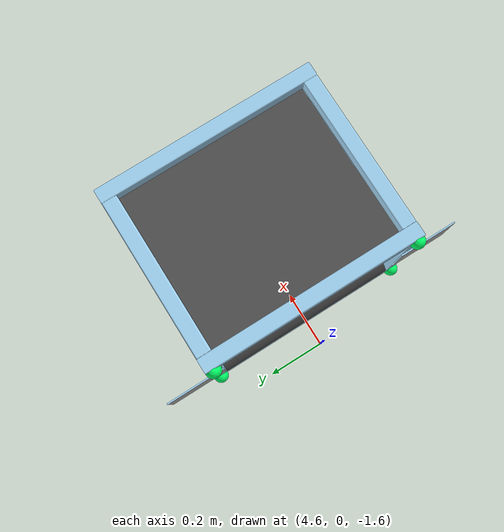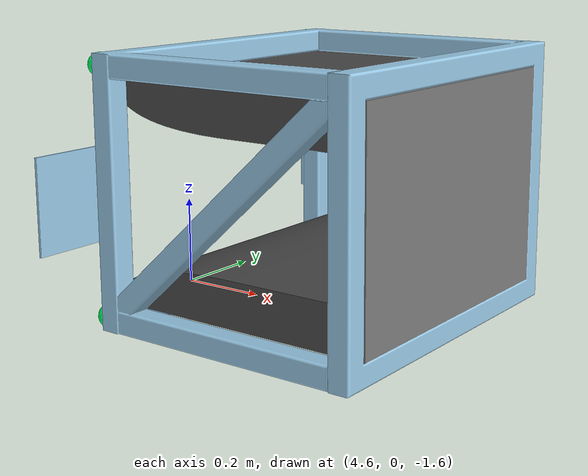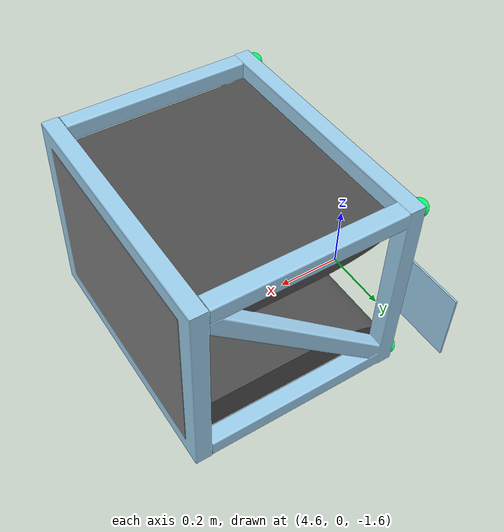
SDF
<sdf version="1.6">
 <world name="ocean_world">
  <plugin filename="gz-sim-physics-system" name="gz::sim::systems::Physics"/>
  <plugin filename="gz-sim-user-commands-system" name="gz::sim::systems::UserCommands"/>
  <plugin filename="gz-sim-scene-broadcaster-system" name="gz::sim::systems::SceneBroadcaster"/>
  <plugin filename="libgz-sim-imu-system.so" name="gz::sim::systems::Imu"/>
  <plugin filename="gz-sim-buoyancy-system" name="gz::sim::systems::Buoyancy">
   <graded_buoyancy>
    <default_density>1000</default_density>
    <density_change><above_depth>0</above_depth><density>1</density></density_change>
   </graded_buoyancy>
  </plugin>
  <include><uri>https://fuel.gazebosim.org/1.0/OpenRobotics/models/Sun</uri></include>
  <include><uri>model://docking_station</uri><pose>5 0 -1.5 0 0 4.71238898038</pose></include>
  <scene><ambient>0.0 1.0 1.0</ambient><background>0.0 0.7 0.8</background></scene>
  <light type="directional" name="sun1">
   <pose>50 0 150 0 0 0</pose>
   <diffuse>1 1 1 1</diffuse>
   <specular>.1 .1 .1 1</specular>
   <direction>0.3 0.3 -1</direction>
   <cast_shadows>false</cast_shadows>
  </light>
 </world>
</sdf>

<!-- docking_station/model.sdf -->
<sdf version="1.6">
  <model name="docking_station">
    <link name="link">
      <visual name="visual">
        <geometry>
          <mesh>
            <uri>model://docking_station/meshes/dock_station.dae</uri>
          </mesh>
        </geometry>
      </visual>
      <collision name="collision">
        <geometry>
          <mesh>
            <uri>model://docking_station/meshes/dock_station.dae</uri>
          </mesh>
        </geometry>
        <surface>
          <friction>
            <ode>
              <mu>0.01</mu>
              <mu2>0.01</mu2>
            </ode>
          </friction>
        </surface>
      </collision>
    </link>

    <link name="led_top_left">
      <pose>-0.35 -0.31 0.455 0 0 0</pose>
      <visual name="visual">
        <geometry>
          <sphere>
            <radius>0.025</radius>
          </sphere>
        </geometry>
        <material>
          <ambient>0 1 0.4 1</ambient>
          <diffuse>0 1 0.4 1</diffuse>
          <emissive>0 1 0.4 1</emissive>
        </material>
      </visual>
    </link>

    <link name="led_top_right">
      <pose>0.35 -0.31 0.455 0 0 0</pose>
      <visual name="visual">
        <geometry>
          <sphere>
            <radius>0.025</radius>
          </sphere>
        </geometry>
        <material>
          <ambient>0 1 0.4 1</ambient>
          <diffuse>0 1 0.4 1</diffuse>
          <emissive>0 1 0.4 1</emissive>
        </material>
      </visual>
    </link>

    <link name="led_bottom_left">
      <pose>-0.35 -0.31 -0.075 0 0 0</pose>
      <visual name="visual">
        <geometry>
          <sphere>
            <radius>0.025</radius>
          </sphere>
        </geometry>
        <material>
          <ambient>0 1 0.4 1</ambient>
          <diffuse>0 1 0.4 1</diffuse>
          <emissive>0 1 0.4 1</emissive>
        </material>
      </visual>
    </link>

    <link name="led_bottom_right">
      <pose>0.35 -0.31 -0.075 0 0 0</pose>
      <visual name="visual">
        <geometry>
          <sphere>
            <radius>0.025</radius>
          </sphere>
        </geometry>
        <material>
          <ambient>0 1 0.4 1</ambient>
          <diffuse>0 1 0.4 1</diffuse>
          <emissive>0 1 0.4 1</emissive>
        </material>
      </visual>
    </link>

    <plugin filename="DockSway" name="dock::DockSway">
      <enabled>true</enabled>
      <period>4.0</period>
      <heave_amplitude>0.1</heave_amplitude>
      <heave_phase>0.0</heave_phase>
      <sway_amplitude>0.1</sway_amplitude>
      <sway_phase>1.5708</sway_phase>
    </plugin>

    <plugin filename="gz-sim-pose-publisher-system"
      name="gz::sim::systems::PosePublisher">
      <publish_model_pose>true</publish_model_pose>
      <publish_link_pose>false</publish_link_pose>
      <update_frequency>50</update_frequency>
    </plugin>

  </model>
</sdf>
